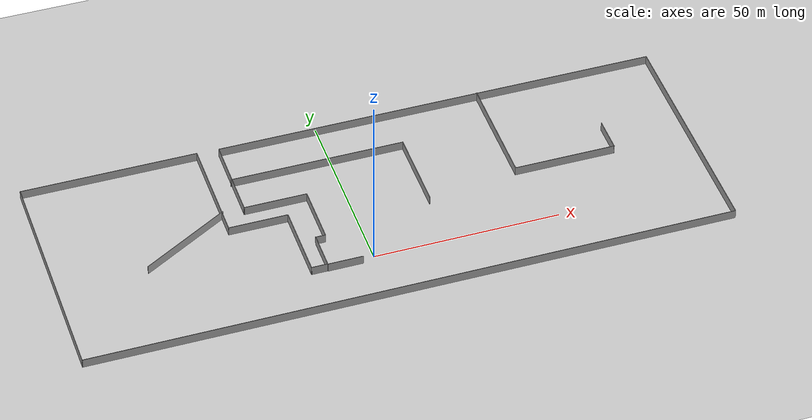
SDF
<sdf version="1.6">
 <world name="default">
  <include><uri>model://sun</uri></include>
  <include><uri>model://ground_plane</uri></include>
  <model name="testmap">
   <pose>6.27388 16.837 0 0 -0 0</pose>
   <link name="Wall_0">
    <collision name="Wall_0_Collision">
     <geometry><box><size>9.5 0.15 2.5</size></box></geometry>
     <pose>0 0 1.25 0 -0 0</pose>
    </collision>
    <visual name="Wall_0_Visual">
     <pose>0 0 1.25 0 -0 0</pose>
     <geometry><box><size>9.5 0.15 2.5</size></box></geometry>
     <material>
      <script><uri>file://media/materials/scripts/gazebo.material</uri><name>Gazebo/Grey</name></script>
      <ambient>1 1 1 1</ambient>
     </material>
     <meta><layer>0</layer></meta>
    </visual>
    <pose>-14.25 -18.25 0 0 -0 3.14159</pose>
   </link>
   <link name="Wall_1">
    <collision name="Wall_1_Collision">
     <geometry><box><size>10.5 0.15 2.5</size></box></geometry>
     <pose>0 0 1.25 0 -0 0</pose>
    </collision>
    <visual name="Wall_1_Visual">
     <pose>0 0 1.25 0 -0 0</pose>
     <geometry><box><size>10.5 0.15 2.5</size></box></geometry>
     <material>
      <script><uri>file://media/materials/scripts/gazebo.material</uri><name>Gazebo/Grey</name></script>
      <ambient>1 1 1 1</ambient>
     </material>
     <meta><layer>0</layer></meta>
    </visual>
    <pose>-18.925 -13.075 0 0 -0 1.5708</pose>
   </link>
   <link name="Wall_10">
    <collision name="Wall_10_Collision">
     <geometry><box><size>63.75 0.15 2.5</size></box></geometry>
     <pose>0 0 1.25 0 -0 0</pose>
    </collision>
    <visual name="Wall_10_Visual">
     <pose>0 0 1.25 0 -0 0</pose>
     <geometry><box><size>63.75 0.15 2.5</size></box></geometry>
     <material>
      <script><uri>file://media/materials/scripts/gazebo.material</uri><name>Gazebo/Grey</name></script>
      <ambient>1 1 1 1</ambient>
     </material>
     <meta><layer>0</layer></meta>
    </visual>
    <pose>-86.425 -1e-06 0 0 -0 1.5708</pose>
   </link>
   <link name="Wall_11">
    <collision name="Wall_11_Collision">
     <geometry><box><size>47.5 0.15 2.5</size></box></geometry>
     <pose>0 0 1.25 0 -0 0</pose>
    </collision>
    <visual name="Wall_11_Visual">
     <pose>0 0 1.25 0 -0 0</pose>
     <geometry><box><size>47.5 0.15 2.5</size></box></geometry>
     <material>
      <script><uri>file://media/materials/scripts/gazebo.material</uri><name>Gazebo/Grey</name></script>
      <ambient>1 1 1 1</ambient>
     </material>
     <meta><layer>0</layer></meta>
    </visual>
    <pose>-62.75 31.8 0 0 -0 0</pose>
   </link>
   <link name="Wall_12">
    <collision name="Wall_12_Collision">
     <geometry><box><size>29.75 0.15 2.5</size></box></geometry>
     <pose>0 0 1.25 0 -0 0</pose>
    </collision>
    <visual name="Wall_12_Visual">
     <pose>0 0 1.25 0 -0 0</pose>
     <geometry><box><size>29.75 0.15 2.5</size></box></geometry>
     <material>
      <script><uri>file://media/materials/scripts/gazebo.material</uri><name>Gazebo/Grey</name></script>
      <ambient>1 1 1 1</ambient>
     </material>
     <meta><layer>0</layer></meta>
    </visual>
    <pose>-39.075 17 0 0 -0 -1.5708</pose>
   </link>
   <link name="Wall_13">
    <collision name="Wall_13_Collision">
     <geometry><box><size>16 0.15 2.5</size></box></geometry>
     <pose>0 0 1.25 0 -0 0</pose>
    </collision>
    <visual name="Wall_13_Visual">
     <pose>0 0 1.25 0 -0 0</pose>
     <geometry><box><size>16 0.15 2.5</size></box></geometry>
     <material>
      <script><uri>file://media/materials/scripts/gazebo.material</uri><name>Gazebo/Grey</name></script>
      <ambient>1 1 1 1</ambient>
     </material>
     <meta><layer>0</layer></meta>
    </visual>
    <pose>-31.15 2.2 0 0 -0 0</pose>
   </link>
   <link name="Wall_14">
    <collision name="Wall_14_Collision">
     <geometry><box><size>20.5 0.15 2.5</size></box></geometry>
     <pose>0 0 1.25 0 -0 0</pose>
    </collision>
    <visual name="Wall_14_Visual">
     <pose>0 0 1.25 0 -0 0</pose>
     <geometry><box><size>20.5 0.15 2.5</size></box></geometry>
     <material>
      <script><uri>file://media/materials/scripts/gazebo.material</uri><name>Gazebo/Grey</name></script>
      <ambient>1 1 1 1</ambient>
     </material>
     <meta><layer>0</layer></meta>
    </visual>
    <pose>-23.225 -7.975 0 0 -0 -1.5708</pose>
   </link>
   <link name="Wall_15">
    <collision name="Wall_15_Collision">
     <geometry><box><size>4.5 0.15 2.5</size></box></geometry>
     <pose>0 0 1.25 0 -0 0</pose>
    </collision>
    <visual name="Wall_15_Visual">
     <pose>0 0 1.25 0 -0 0</pose>
     <geometry><box><size>4.5 0.15 2.5</size></box></geometry>
     <material>
      <script><uri>file://media/materials/scripts/gazebo.material</uri><name>Gazebo/Grey</name></script>
      <ambient>1 1 1 1</ambient>
     </material>
     <meta><layer>0</layer></meta>
    </visual>
    <pose>-21.05 -18.15 0 0 -0 0</pose>
   </link>
   <link name="Wall_17">
    <collision name="Wall_17_Collision">
     <geometry><box><size>31 0.15 2.5</size></box></geometry>
     <pose>0 0 1.25 0 -0 0</pose>
    </collision>
    <visual name="Wall_17_Visual">
     <pose>0 0 1.25 0 -0 0</pose>
     <geometry><box><size>31 0.15 2.5</size></box></geometry>
     <material>
      <script><uri>file://media/materials/scripts/gazebo.material</uri><name>Gazebo/Grey</name></script>
      <ambient>1 1 1 1</ambient>
     </material>
     <meta><layer>0</layer></meta>
    </visual>
    <pose>38.1942 16.28 0 0 -0 -1.5708</pose>
   </link>
   <link name="Wall_18">
    <collision name="Wall_18_Collision">
     <geometry><box><size>27.5 0.15 2.5</size></box></geometry>
     <pose>0 0 1.25 0 -0 0</pose>
    </collision>
    <visual name="Wall_18_Visual">
     <pose>0 0 1.25 0 -0 0</pose>
     <geometry><box><size>27.5 0.15 2.5</size></box></geometry>
     <material>
      <script><uri>file://media/materials/scripts/gazebo.material</uri><name>Gazebo/Grey</name></script>
      <ambient>1 1 1 1</ambient>
     </material>
     <meta><layer>0</layer></meta>
    </visual>
    <pose>51.8692 0.85498 0 0 -0 0</pose>
   </link>
   <link name="Wall_19">
    <collision name="Wall_19_Collision">
     <geometry><box><size>9.5 0.15 2.5</size></box></geometry>
     <pose>0 0 1.25 0 -0 0</pose>
    </collision>
    <visual name="Wall_19_Visual">
     <pose>0 0 1.25 0 -0 0</pose>
     <geometry><box><size>9.5 0.15 2.5</size></box></geometry>
     <material>
      <script><uri>file://media/materials/scripts/gazebo.material</uri><name>Gazebo/Grey</name></script>
      <ambient>1 1 1 1</ambient>
     </material>
     <meta><layer>0</layer></meta>
    </visual>
    <pose>65.5442 5.52998 0 0 -0 1.5708</pose>
   </link>
   <link name="Wall_2">
    <collision name="Wall_2_Collision">
     <geometry><box><size>2.75 0.15 2.5</size></box></geometry>
     <pose>0 0 1.25 0 -0 0</pose>
    </collision>
    <visual name="Wall_2_Visual">
     <pose>0 0 1.25 0 -0 0</pose>
     <geometry><box><size>2.75 0.15 2.5</size></box></geometry>
     <material>
      <script><uri>file://media/materials/scripts/gazebo.material</uri><name>Gazebo/Grey</name></script>
      <ambient>1 1 1 1</ambient>
     </material>
     <meta><layer>0</layer></meta>
    </visual>
    <pose>-17.625 -7.9 0 0 -0 0</pose>
   </link>
   <link name="Wall_21">
    <collision name="Wall_21_Collision">
     <geometry><box><size>27.25 0.15 2.5</size></box></geometry>
     <pose>0 0 1.25 0 -0 0</pose>
    </collision>
    <visual name="Wall_21_Visual">
     <pose>0 0 1.25 0 -0 0</pose>
     <geometry><box><size>27.25 0.15 2.5</size></box></geometry>
     <material>
      <script><uri>file://media/materials/scripts/gazebo.material</uri><name>Gazebo/Grey</name></script>
      <ambient>1 1 1 1</ambient>
     </material>
     <meta><layer>0</layer></meta>
    </visual>
    <pose>-50.5941 1.68965 0 0 -0 -2.61799</pose>
   </link>
   <link name="Wall_23">
    <collision name="Wall_23_Collision">
     <geometry><box><size>47 0.15 2.5</size></box></geometry>
     <pose>0 0 1.25 0 -0 0</pose>
    </collision>
    <visual name="Wall_23_Visual">
     <pose>0 0 1.25 0 -0 0</pose>
     <geometry><box><size>47 0.15 2.5</size></box></geometry>
     <material>
      <script><uri>file://media/materials/scripts/gazebo.material</uri><name>Gazebo/Grey</name></script>
      <ambient>1 1 1 1</ambient>
     </material>
     <meta><layer>0</layer></meta>
    </visual>
    <pose>-9.99019 19.3531 0 0 -0 0</pose>
   </link>
   <link name="Wall_24">
    <collision name="Wall_24_Collision">
     <geometry><box><size>22.25 0.15 2.5</size></box></geometry>
     <pose>0 0 1.25 0 -0 0</pose>
    </collision>
    <visual name="Wall_24_Visual">
     <pose>0 0 1.25 0 -0 0</pose>
     <geometry><box><size>22.25 0.15 2.5</size></box></geometry>
     <material>
      <script><uri>file://media/materials/scripts/gazebo.material</uri><name>Gazebo/Grey</name></script>
      <ambient>1 1 1 1</ambient>
     </material>
     <meta><layer>0</layer></meta>
    </visual>
    <pose>13.4348 8.30311 0 0 -0 -1.5708</pose>
   </link>
   <link name="Wall_4">
    <collision name="Wall_4_Collision">
     <geometry><box><size>16.25 0.15 2.5</size></box></geometry>
     <pose>0 0 1.25 0 -0 0</pose>
    </collision>
    <visual name="Wall_4_Visual">
     <pose>0 0 1.25 0 -0 0</pose>
     <geometry><box><size>16.25 0.15 2.5</size></box></geometry>
     <material>
      <script><uri>file://media/materials/scripts/gazebo.material</uri><name>Gazebo/Grey</name></script>
      <ambient>1 1 1 1</ambient>
     </material>
     <meta><layer>0</layer></meta>
    </visual>
    <pose>-16.325 0.149999 0 0 -0 1.5708</pose>
   </link>
   <link name="Wall_5">
    <collision name="Wall_5_Collision">
     <geometry><box><size>17 0.15 2.5</size></box></geometry>
     <pose>0 0 1.25 0 -0 0</pose>
    </collision>
    <visual name="Wall_5_Visual">
     <pose>0 0 1.25 0 -0 0</pose>
     <geometry><box><size>17 0.15 2.5</size></box></geometry>
     <material>
      <script><uri>file://media/materials/scripts/gazebo.material</uri><name>Gazebo/Grey</name></script>
      <ambient>1 1 1 1</ambient>
     </material>
     <meta><layer>0</layer></meta>
    </visual>
    <pose>-24.75 8.2 0 0 -0 3.14159</pose>
   </link>
   <link name="Wall_6">
    <collision name="Wall_6_Collision">
     <geometry><box><size>23.5 0.15 2.5</size></box></geometry>
     <pose>0 0 1.25 0 -0 0</pose>
    </collision>
    <visual name="Wall_6_Visual">
     <pose>0 0 1.25 0 -0 0</pose>
     <geometry><box><size>23.5 0.15 2.5</size></box></geometry>
     <material>
      <script><uri>file://media/materials/scripts/gazebo.material</uri><name>Gazebo/Grey</name></script>
      <ambient>1 1 1 1</ambient>
     </material>
     <meta><layer>0</layer></meta>
    </visual>
    <pose>-33.175 19.875 0 0 -0 1.5708</pose>
   </link>
   <link name="Wall_7">
    <collision name="Wall_7_Collision">
     <geometry><box><size>119.75 0.15 2.5</size></box></geometry>
     <pose>0 0 1.25 0 -0 0</pose>
    </collision>
    <visual name="Wall_7_Visual">
     <pose>0 0 1.25 0 -0 0</pose>
     <geometry><box><size>119.75 0.15 2.5</size></box></geometry>
     <material>
      <script><uri>file://media/materials/scripts/gazebo.material</uri><name>Gazebo/Grey</name></script>
      <ambient>1 1 1 1</ambient>
     </material>
     <meta><layer>0</layer></meta>
    </visual>
    <pose>26.625 31.55 0 0 -0 0</pose>
   </link>
   <link name="Wall_8">
    <collision name="Wall_8_Collision">
     <geometry><box><size>63.5 0.15 2.5</size></box></geometry>
     <pose>0 0 1.25 0 -0 0</pose>
    </collision>
    <visual name="Wall_8_Visual">
     <pose>0 0 1.25 0 -0 0</pose>
     <geometry><box><size>63.5 0.15 2.5</size></box></geometry>
     <material>
      <script><uri>file://media/materials/scripts/gazebo.material</uri><name>Gazebo/Grey</name></script>
      <ambient>1 1 1 1</ambient>
     </material>
     <meta><layer>0</layer></meta>
    </visual>
    <pose>86.425 -0.125001 0 0 -0 -1.5708</pose>
   </link>
   <link name="Wall_9">
    <collision name="Wall_9_Collision">
     <geometry><box><size>173 0.15 2.5</size></box></geometry>
     <pose>0 0 1.25 0 -0 0</pose>
    </collision>
    <visual name="Wall_9_Visual">
     <pose>0 0 1.25 0 -0 0</pose>
     <geometry><box><size>173 0.15 2.5</size></box></geometry>
     <material>
      <script><uri>file://media/materials/scripts/gazebo.material</uri><name>Gazebo/Grey</name></script>
      <ambient>1 1 1 1</ambient>
     </material>
     <meta><layer>0</layer></meta>
    </visual>
    <pose>-2e-06 -31.8 0 0 -0 3.14159</pose>
   </link>
   <static>1</static>
  </model>
 </world>
</sdf>
